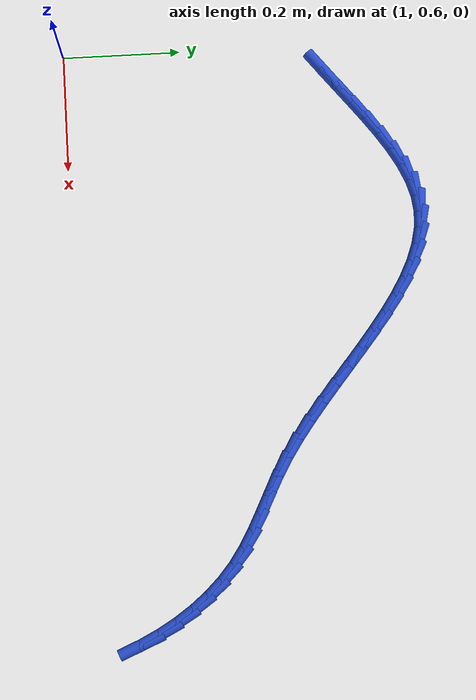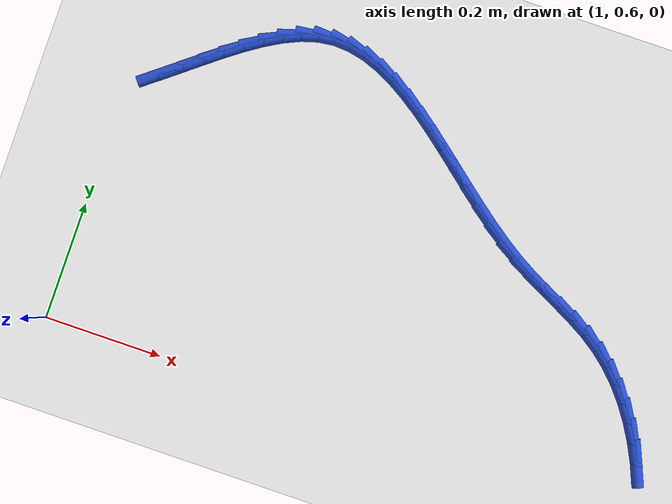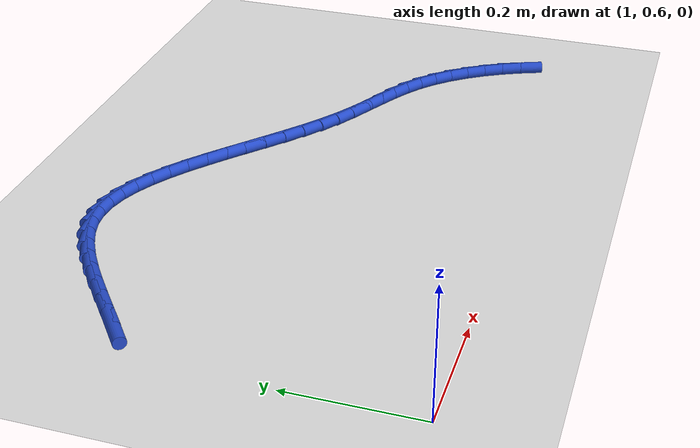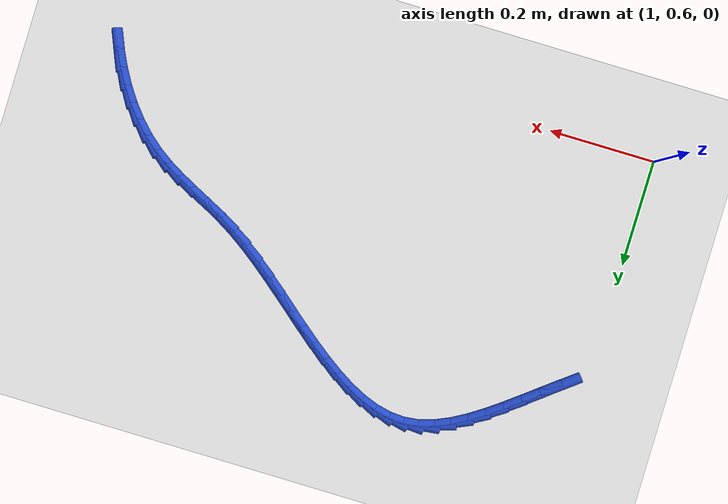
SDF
<sdf version="1.6">
 <world name="default">
  <model name="ground_plane">
   <static>1</static>
   <link name="link">
    <collision name="collision">
     <geometry><plane><normal>0 0 1</normal><size>100 100</size></plane></geometry>
     <surface><friction><ode><mu>100</mu><mu2>50</mu2></ode></friction></surface>
    </collision>
    <visual name="visual">
     <cast_shadows>0</cast_shadows>
     <geometry><plane><normal>0 0 1</normal><size>100 100</size></plane></geometry>
     <material>
      <script><uri>file://media/materials/scripts/gazebo.material</uri><name>Gazebo/WhiteGlow</name></script>
     </material>
    </visual>
   </link>
  </model>
  <model name="line">
   <link name="link_52">
    <pose>1.0486569687084497 1.0443178210687798 0.01 0 1.57 0.6615807123459232</pose>
    <collision name="collision">
     <geometry><cylinder><radius>0.01</radius><length>0.08</length></cylinder></geometry>
    </collision>
    <visual name="visual">
     <material>
      <script><name>Gazebo/Blue</name><uri>file://media/materials/scripts/gazebo.material</uri></script>
     </material>
     <geometry><cylinder><radius>0.01</radius><length>0.08</length></cylinder></geometry>
    </visual>
   </link>
   <link name="link_53">
    <pose>1.0773036921740347 1.0666233305454405 0.01 0 1.57 0.6684445991368353</pose>
    <collision name="collision">
     <geometry><cylinder><radius>0.01</radius><length>0.08</length></cylinder></geometry>
    </collision>
    <visual name="visual">
     <material>
      <script><name>Gazebo/Blue</name><uri>file://media/materials/scripts/gazebo.material</uri></script>
     </material>
     <geometry><cylinder><radius>0.01</radius><length>0.08</length></cylinder></geometry>
    </visual>
   </link>
   <link name="link_54">
    <pose>1.105990826677088 1.089278295466538 0.01 0 1.57 0.6593032197310789</pose>
    <collision name="collision">
     <geometry><cylinder><radius>0.01</radius><length>0.08</length></cylinder></geometry>
    </collision>
    <visual name="visual">
     <material>
      <script><name>Gazebo/Blue</name><uri>file://media/materials/scripts/gazebo.material</uri></script>
     </material>
     <geometry><cylinder><radius>0.01</radius><length>0.08</length></cylinder></geometry>
    </visual>
   </link>
   <link name="link_55">
    <pose>1.1347086026534259 1.1115342570443694 0.01 0 1.57 0.6327938428219791</pose>
    <collision name="collision">
     <geometry><cylinder><radius>0.01</radius><length>0.08</length></cylinder></geometry>
    </collision>
    <visual name="visual">
     <material>
      <script><name>Gazebo/Blue</name><uri>file://media/materials/scripts/gazebo.material</uri></script>
     </material>
     <geometry><cylinder><radius>0.01</radius><length>0.08</length></cylinder></geometry>
    </visual>
   </link>
   <link name="link_56">
    <pose>1.1634325362346247 1.1326004631111477 0.01 0 1.57 0.5867625874459713</pose>
    <collision name="collision">
     <geometry><cylinder><radius>0.01</radius><length>0.08</length></cylinder></geometry>
    </collision>
    <visual name="visual">
     <material>
      <script><name>Gazebo/Blue</name><uri>file://media/materials/scripts/gazebo.material</uri></script>
     </material>
     <geometry><cylinder><radius>0.01</radius><length>0.08</length></cylinder></geometry>
    </visual>
   </link>
   <link name="link_57">
    <pose>1.1921381435522589 1.1516861614990852 0.01 0 1.57 0.5174532859812316</pose>
    <collision name="collision">
     <geometry><cylinder><radius>0.01</radius><length>0.08</length></cylinder></geometry>
    </collision>
    <visual name="visual">
     <material>
      <script><name>Gazebo/Blue</name><uri>file://media/materials/scripts/gazebo.material</uri></script>
     </material>
     <geometry><cylinder><radius>0.01</radius><length>0.08</length></cylinder></geometry>
    </visual>
   </link>
   <link name="link_58">
    <pose>1.2208009407379048 1.1680006000403955 0.01 0 1.57 0.41948848225565616</pose>
    <collision name="collision">
     <geometry><cylinder><radius>0.01</radius><length>0.08</length></cylinder></geometry>
    </collision>
    <visual name="visual">
     <material>
      <script><name>Gazebo/Blue</name><uri>file://media/materials/scripts/gazebo.material</uri></script>
     </material>
     <geometry><cylinder><radius>0.01</radius><length>0.08</length></cylinder></geometry>
    </visual>
   </link>
   <link name="link_59">
    <pose>1.2493964439231355 1.1807530265672899 0.01 0 1.57 0.2865749003793195</pose>
    <collision name="collision">
     <geometry><cylinder><radius>0.01</radius><length>0.08</length></cylinder></geometry>
    </collision>
    <visual name="visual">
     <material>
      <script><name>Gazebo/Blue</name><uri>file://media/materials/scripts/gazebo.material</uri></script>
     </material>
     <geometry><cylinder><radius>0.01</radius><length>0.08</length></cylinder></geometry>
    </visual>
   </link>
   <link name="link_60">
    <pose>1.2779001692395284 1.1891526889119826 0.01 0 1.57 0.11614795769388096</pose>
    <collision name="collision">
     <geometry><cylinder><radius>0.01</radius><length>0.08</length></cylinder></geometry>
    </collision>
    <visual name="visual">
     <material>
      <script><name>Gazebo/Blue</name><uri>file://media/materials/scripts/gazebo.material</uri></script>
     </material>
     <geometry><cylinder><radius>0.01</radius><length>0.08</length></cylinder></geometry>
    </visual>
   </link>
   <link name="link_61">
    <pose>1.3062900569185794 1.1924650246521082 0.01 0 1.57 -0.0626373958097541</pose>
    <collision name="collision">
     <geometry><cylinder><radius>0.01</radius><length>0.08</length></cylinder></geometry>
    </collision>
    <visual name="visual">
     <material>
      <script><name>Gazebo/Blue</name><uri>file://media/materials/scripts/gazebo.material</uri></script>
     </material>
     <geometry><cylinder><radius>0.01</radius><length>0.08</length></cylinder></geometry>
    </visual>
   </link>
   <link name="link_62">
    <pose>1.3345757771459756 1.1906909600440376 0.01 0 1.57 -0.22113730544454102</pose>
    <collision name="collision">
     <geometry><cylinder><radius>0.01</radius><length>0.08</length></cylinder></geometry>
    </collision>
    <visual name="visual">
     <material>
      <script><name>Gazebo/Blue</name><uri>file://media/materials/scripts/gazebo.material</uri></script>
     </material>
     <geometry><cylinder><radius>0.01</radius><length>0.08</length></cylinder></geometry>
    </visual>
   </link>
   <link name="link_63">
    <pose>1.3627892933002004 1.1843481693612907 0.01 0 1.57 -0.3530940935712371</pose>
    <collision name="collision">
     <geometry><cylinder><radius>0.01</radius><length>0.08</length></cylinder></geometry>
    </collision>
    <visual name="visual">
     <material>
      <script><name>Gazebo/Blue</name><uri>file://media/materials/scripts/gazebo.material</uri></script>
     </material>
     <geometry><cylinder><radius>0.01</radius><length>0.08</length></cylinder></geometry>
    </visual>
   </link>
   <link name="link_64">
    <pose>1.3909630314813257 1.173965052593851 0.01 0 1.57 -0.4582893762271846</pose>
    <collision name="collision">
     <geometry><cylinder><radius>0.01</radius><length>0.08</length></cylinder></geometry>
    </collision>
    <visual name="visual">
     <material>
      <script><name>Gazebo/Blue</name><uri>file://media/materials/scripts/gazebo.material</uri></script>
     </material>
     <geometry><cylinder><radius>0.01</radius><length>0.08</length></cylinder></geometry>
    </visual>
   </link>
   <link name="link_65">
    <pose>1.4191294177894251 1.1600700097317023 0.01 0 1.57 -0.5394719880563356</pose>
    <collision name="collision">
     <geometry><cylinder><radius>0.01</radius><length>0.08</length></cylinder></geometry>
    </collision>
    <visual name="visual">
     <material>
      <script><name>Gazebo/Blue</name><uri>file://media/materials/scripts/gazebo.material</uri></script>
     </material>
     <geometry><cylinder><radius>0.01</radius><length>0.08</length></cylinder></geometry>
    </visual>
   </link>
   <link name="link_66">
    <pose>1.4473208783245723 1.143191440764827 0.01 0 1.57 -0.6001818204485642</pose>
    <collision name="collision">
     <geometry><cylinder><radius>0.01</radius><length>0.08</length></cylinder></geometry>
    </collision>
    <visual name="visual">
     <material>
      <script><name>Gazebo/Blue</name><uri>file://media/materials/scripts/gazebo.material</uri></script>
     </material>
     <geometry><cylinder><radius>0.01</radius><length>0.08</length></cylinder></geometry>
    </visual>
   </link>
   <link name="link_67">
    <pose>1.47556983918684 1.1238577456832095 0.01 0 1.57 -0.6436423722413558</pose>
    <collision name="collision">
     <geometry><cylinder><radius>0.01</radius><length>0.08</length></cylinder></geometry>
    </collision>
    <visual name="visual">
     <material>
      <script><name>Gazebo/Blue</name><uri>file://media/materials/scripts/gazebo.material</uri></script>
     </material>
     <geometry><cylinder><radius>0.01</radius><length>0.08</length></cylinder></geometry>
    </visual>
   </link>
   <link name="link_68">
    <pose>1.503908726476302 1.102597324476833 0.01 0 1.57 -0.6723745872824255</pose>
    <collision name="collision">
     <geometry><cylinder><radius>0.01</radius><length>0.08</length></cylinder></geometry>
    </collision>
    <visual name="visual">
     <material>
      <script><name>Gazebo/Blue</name><uri>file://media/materials/scripts/gazebo.material</uri></script>
     </material>
     <geometry><cylinder><radius>0.01</radius><length>0.08</length></cylinder></geometry>
    </visual>
   </link>
   <link name="link_69">
    <pose>1.532369966293032 1.0799385771356809 0.01 0 1.57 -0.6881438644725785</pose>
    <collision name="collision">
     <geometry><cylinder><radius>0.01</radius><length>0.08</length></cylinder></geometry>
    </collision>
    <visual name="visual">
     <material>
      <script><name>Gazebo/Blue</name><uri>file://media/materials/scripts/gazebo.material</uri></script>
     </material>
     <geometry><cylinder><radius>0.01</radius><length>0.08</length></cylinder></geometry>
    </visual>
   </link>
   <link name="link_70">
    <pose>1.5609859847371022 1.0564099036497365 0.01 0 1.57 -0.6920175480796301</pose>
    <collision name="collision">
     <geometry><cylinder><radius>0.01</radius><length>0.08</length></cylinder></geometry>
    </collision>
    <visual name="visual">
     <material>
      <script><name>Gazebo/Blue</name><uri>file://media/materials/scripts/gazebo.material</uri></script>
     </material>
     <geometry><cylinder><radius>0.01</radius><length>0.08</length></cylinder></geometry>
    </visual>
   </link>
   <link name="link_71">
    <pose>1.5897892079085867 1.032539704008984 0.01 0 1.57 -0.6844351832804775</pose>
    <collision name="collision">
     <geometry><cylinder><radius>0.01</radius><length>0.08</length></cylinder></geometry>
    </collision>
    <visual name="visual">
     <material>
      <script><name>Gazebo/Blue</name><uri>file://media/materials/scripts/gazebo.material</uri></script>
     </material>
     <geometry><cylinder><radius>0.01</radius><length>0.08</length></cylinder></geometry>
    </visual>
   </link>
   <link name="link_72">
    <pose>1.6188120619075583 1.0088563782034057 0.01 0 1.57 -0.6652578497721413</pose>
    <collision name="collision">
     <geometry><cylinder><radius>0.01</radius><length>0.08</length></cylinder></geometry>
    </collision>
    <visual name="visual">
     <material>
      <script><name>Gazebo/Blue</name><uri>file://media/materials/scripts/gazebo.material</uri></script>
     </material>
     <geometry><cylinder><radius>0.01</radius><length>0.08</length></cylinder></geometry>
    </visual>
   </link>
   <link name="link_73">
    <pose>1.6480869728340912 0.9858883262229858 0.01 0 1.57 -0.6337927703095563</pose>
    <collision name="collision">
     <geometry><cylinder><radius>0.01</radius><length>0.08</length></cylinder></geometry>
    </collision>
    <visual name="visual">
     <material>
      <script><name>Gazebo/Blue</name><uri>file://media/materials/scripts/gazebo.material</uri></script>
     </material>
     <geometry><cylinder><radius>0.01</radius><length>0.08</length></cylinder></geometry>
    </visual>
   </link>
   <link name="link_74">
    <pose>1.6776463667882577 0.9641639480577077 0.01 0 1.57 -0.588807853770085</pose>
    <collision name="collision">
     <geometry><cylinder><radius>0.01</radius><length>0.08</length></cylinder></geometry>
    </collision>
    <visual name="visual">
     <material>
      <script><name>Gazebo/Blue</name><uri>file://media/materials/scripts/gazebo.material</uri></script>
     </material>
     <geometry><cylinder><radius>0.01</radius><length>0.08</length></cylinder></geometry>
    </visual>
   </link>
   <link name="link_75">
    <pose>1.7075226698701318 0.9442116436975547 0.01 0 1.57 -0.5303118893194686</pose>
    <collision name="collision">
     <geometry><cylinder><radius>0.01</radius><length>0.08</length></cylinder></geometry>
    </collision>
    <visual name="visual">
     <material>
      <script><name>Gazebo/Blue</name><uri>file://media/materials/scripts/gazebo.material</uri></script>
     </material>
     <geometry><cylinder><radius>0.01</radius><length>0.08</length></cylinder></geometry>
    </visual>
   </link>
   <link name="link_76">
    <pose>1.7377308285303172 0.9264995112794552 0.01 0 1.57 -0.4815234400116237</pose>
    <collision name="collision">
     <geometry><cylinder><radius>0.01</radius><length>0.08</length></cylinder></geometry>
    </collision>
    <visual name="visual">
     <material>
      <script><name>Gazebo/Blue</name><uri>file://media/materials/scripts/gazebo.material</uri></script>
     </material>
     <geometry><cylinder><radius>0.01</radius><length>0.08</length></cylinder></geometry>
    </visual>
   </link>
   <link name="link_77">
    <pose>1.7680434676443677 0.9106596802307483 0.01 0 1.57 -0.46205564768008384</pose>
    <collision name="collision">
     <geometry><cylinder><radius>0.01</radius><length>0.08</length></cylinder></geometry>
    </collision>
    <visual name="visual">
     <material>
      <script><name>Gazebo/Blue</name><uri>file://media/materials/scripts/gazebo.material</uri></script>
     </material>
     <geometry><cylinder><radius>0.01</radius><length>0.08</length></cylinder></geometry>
    </visual>
   </link>
   <link name="link_78">
    <pose>1.7980560410433808 0.8957130696506013 0.01 0 1.57 -0.47435880953655213</pose>
    <collision name="collision">
     <geometry><cylinder><radius>0.01</radius><length>0.08</length></cylinder></geometry>
    </collision>
    <visual name="visual">
     <material>
      <script><name>Gazebo/Blue</name><uri>file://media/materials/scripts/gazebo.material</uri></script>
     </material>
     <geometry><cylinder><radius>0.01</radius><length>0.08</length></cylinder></geometry>
    </visual>
   </link>
   <link name="link_79">
    <pose>1.8273599548876955 0.8806666348543095 0.01 0 1.57 -0.5200186441230499</pose>
    <collision name="collision">
     <geometry><cylinder><radius>0.01</radius><length>0.08</length></cylinder></geometry>
    </collision>
    <visual name="visual">
     <material>
      <script><name>Gazebo/Blue</name><uri>file://media/materials/scripts/gazebo.material</uri></script>
     </material>
     <geometry><cylinder><radius>0.01</radius><length>0.08</length></cylinder></geometry>
    </visual>
   </link>
   <link name="link_80">
    <pose>1.8555466153376508 0.8645273311571686 0.01 0 1.57 -0.5995686927534252</pose>
    <collision name="collision">
     <geometry><cylinder><radius>0.01</radius><length>0.08</length></cylinder></geometry>
    </collision>
    <visual name="visual">
     <material>
      <script><name>Gazebo/Blue</name><uri>file://media/materials/scripts/gazebo.material</uri></script>
     </material>
     <geometry><cylinder><radius>0.01</radius><length>0.08</length></cylinder></geometry>
    </visual>
   </link>
   <link name="link_81">
    <pose>1.8822080642144108 0.8463041290718889 0.01 0 1.57 -0.7002292230484674</pose>
    <collision name="collision">
     <geometry><cylinder><radius>0.01</radius><length>0.08</length></cylinder></geometry>
    </collision>
    <visual name="visual">
     <material>
      <script><name>Gazebo/Blue</name><uri>file://media/materials/scripts/gazebo.material</uri></script>
     </material>
     <geometry><cylinder><radius>0.01</radius><length>0.08</length></cylinder></geometry>
    </visual>
   </link>
   <link name="link_82">
    <pose>1.9070509970609313 0.8253694789327767 0.01 0 1.57 -0.7964642601784605</pose>
    <collision name="collision">
     <geometry><cylinder><radius>0.01</radius><length>0.08</length></cylinder></geometry>
    </collision>
    <visual name="visual">
     <material>
      <script><name>Gazebo/Blue</name><uri>file://media/materials/scripts/gazebo.material</uri></script>
     </material>
     <geometry><cylinder><radius>0.01</radius><length>0.08</length></cylinder></geometry>
    </visual>
   </link>
   <link name="link_83">
    <pose>1.9300286844457302 0.8018775330974418 0.01 0 1.57 -0.8852121207882339</pose>
    <collision name="collision">
     <geometry><cylinder><radius>0.01</radius><length>0.08</length></cylinder></geometry>
    </collision>
    <visual name="visual">
     <material>
      <script><name>Gazebo/Blue</name><uri>file://media/materials/scripts/gazebo.material</uri></script>
     </material>
     <geometry><cylinder><radius>0.01</radius><length>0.08</length></cylinder></geometry>
    </visual>
   </link>
   <link name="link_84">
    <pose>1.9511263746304413 0.7760838208871643 0.01 0 1.57 -0.9669745495453833</pose>
    <collision name="collision">
     <geometry><cylinder><radius>0.01</radius><length>0.08</length></cylinder></geometry>
    </collision>
    <visual name="visual">
     <material>
      <script><name>Gazebo/Blue</name><uri>file://media/materials/scripts/gazebo.material</uri></script>
     </material>
     <geometry><cylinder><radius>0.01</radius><length>0.08</length></cylinder></geometry>
    </visual>
   </link>
   <link name="link_85">
    <pose>1.9703293158766995 0.7482438716232237 0.01 0 1.57 -1.0424980366986336</pose>
    <collision name="collision">
     <geometry><cylinder><radius>0.01</radius><length>0.08</length></cylinder></geometry>
    </collision>
    <visual name="visual">
     <material>
      <script><name>Gazebo/Blue</name><uri>file://media/materials/scripts/gazebo.material</uri></script>
     </material>
     <geometry><cylinder><radius>0.01</radius><length>0.08</length></cylinder></geometry>
    </visual>
   </link>
   <link name="link_86">
    <pose>1.9876227564461377 0.7186132146269008 0.01 0 1.57 -1.1126500055836113</pose>
    <collision name="collision">
     <geometry><cylinder><radius>0.01</radius><length>0.08</length></cylinder></geometry>
    </collision>
    <visual name="visual">
     <material>
      <script><name>Gazebo/Blue</name><uri>file://media/materials/scripts/gazebo.material</uri></script>
     </material>
     <geometry><cylinder><radius>0.01</radius><length>0.08</length></cylinder></geometry>
    </visual>
   </link>
   <link name="link_87">
    <pose>2.0029919446003897 0.687447379219475 0.01 0 1.57 -1.1783386576221613</pose>
    <collision name="collision">
     <geometry><cylinder><radius>0.01</radius><length>0.08</length></cylinder></geometry>
    </collision>
    <visual name="visual">
     <material>
      <script><name>Gazebo/Blue</name><uri>file://media/materials/scripts/gazebo.material</uri></script>
     </material>
     <geometry><cylinder><radius>0.01</radius><length>0.08</length></cylinder></geometry>
    </visual>
   </link>
  </model>
 </world>
</sdf>
